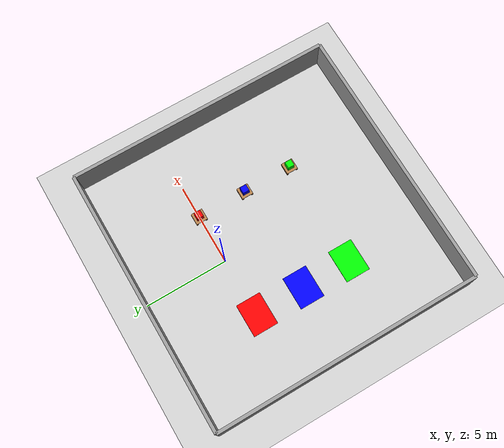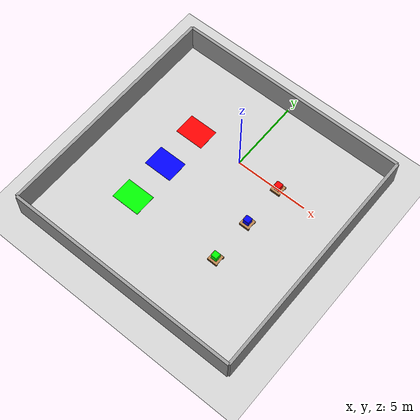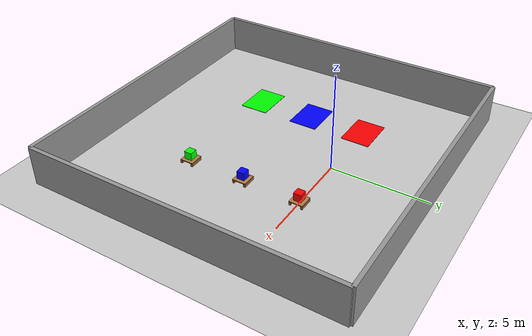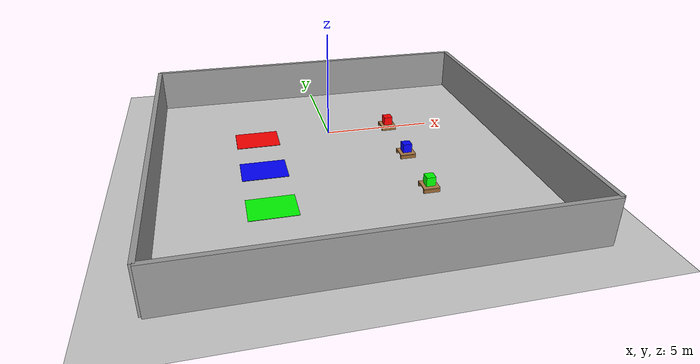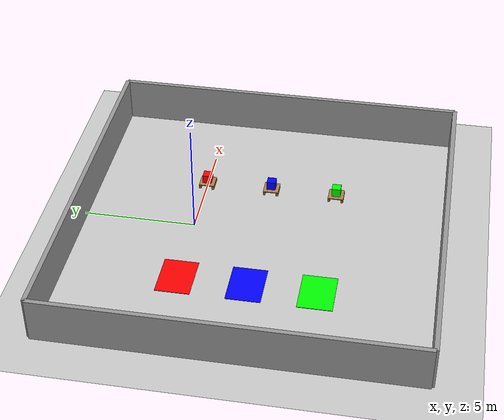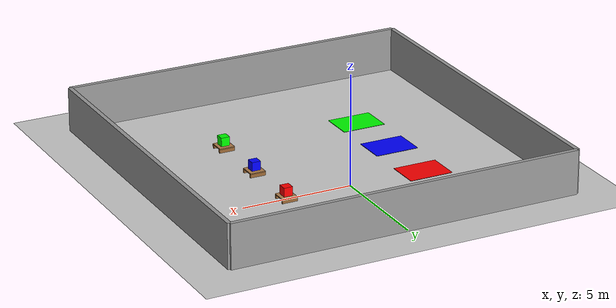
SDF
<?xml version="1.0" ?>
<sdf version="1.6">
  <world name="simple_world">

    <include><uri>model://sun</uri></include>
    <include><uri>model://ground_plane</uri></include>

    <!-- Pallet with clearance for forks (SQUARE: 0.7m x 0.7m) -->
    <model name="pallet">
      <static>false</static>
      <pose>3 0 0 0 0 0</pose>
      <link name="link">
        <!-- Left runner (HIGH FRICTION for grip) - aligned with deck edge -->
        <visual name="runner_left">
          <pose>0 -0.30 0.08 0 0 0</pose>
          <geometry><box><size>0.7 0.10 0.16</size></box></geometry>
          <material><ambient>0.6 0.4 0.2 1</ambient></material>
        </visual>
        <collision name="runner_left_col">
          <pose>0 -0.30 0.08 0 0 0</pose>
          <geometry><box><size>0.7 0.10 0.16</size></box></geometry>
          <surface>
            <friction>
              <ode>
                <mu>2000.0</mu>
                <mu2>2000.0</mu2>
              </ode>
            </friction>
          </surface>
        </collision>

        <!-- Right runner (HIGH FRICTION for grip) - aligned with deck edge -->
        <visual name="runner_right">
          <pose>0 0.30 0.08 0 0 0</pose>
          <geometry><box><size>0.7 0.10 0.16</size></box></geometry>
          <material><ambient>0.6 0.4 0.2 1</ambient></material>
        </visual>
        <collision name="runner_right_col">
          <pose>0 0.30 0.08 0 0 0</pose>
          <geometry><box><size>0.7 0.10 0.16</size></box></geometry>
          <surface>
            <friction>
              <ode>
                <mu>2000.0</mu>
                <mu2>2000.0</mu2>
              </ode>
            </friction>
          </surface>
        </collision>

        <!-- Top deck -->
        <visual name="deck">
          <pose>0 0 0.18 0 0 0</pose>
          <geometry><box><size>0.7 0.7 0.04</size></box></geometry>
          <material><ambient>0.7 0.5 0.3 1</ambient></material>
        </visual>
        <collision name="deck_col">
          <pose>0 0 0.18 0 0 0</pose>
          <geometry><box><size>0.7 0.7 0.04</size></box></geometry>
        </collision>
        <inertial>
          <mass>0.5</mass>
          <inertia>
            <ixx>0.05</ixx><iyy>0.05</iyy><izz>0.05</izz>
            <ixy>0</ixy><ixz>0</ixz><iyz>0</iyz>
          </inertia>
        </inertial>
      </link>

      <!-- Red Box attached to pallet -->
      <link name="box_link">
        <pose>0 0 0.42 0 0 0</pose>
        <visual name="visual">
          <geometry><box><size>0.4 0.4 0.4</size></box></geometry>
          <material><ambient>1 0 0 1</ambient><diffuse>1 0 0 1</diffuse></material>
        </visual>
        <collision name="collision">
          <geometry><box><size>0.4 0.4 0.4</size></box></geometry>
        </collision>
        <inertial><mass>0.5</mass><inertia><ixx>0.01</ixx><iyy>0.01</iyy><izz>0.01</izz></inertia></inertial>
      </link>

      <!-- Fixed joint to attach box to pallet -->
      <joint name="box_joint" type="fixed">
        <parent>link</parent>
        <child>box_link</child>
      </joint>
    </model>

    <!-- Pallet 2 with blue box (3 units to the right of pallet 1) -->
    <model name="pallet2">
      <static>false</static>
      <pose>3 -3 0 0 0 0</pose>
      <link name="link">
        <!-- Left runner (HIGH FRICTION for grip) - aligned with deck edge -->
        <visual name="runner_left">
          <pose>0 -0.30 0.08 0 0 0</pose>
          <geometry><box><size>0.7 0.10 0.16</size></box></geometry>
          <material><ambient>0.6 0.4 0.2 1</ambient></material>
        </visual>
        <collision name="runner_left_col">
          <pose>0 -0.30 0.08 0 0 0</pose>
          <geometry><box><size>0.7 0.10 0.16</size></box></geometry>
          <surface>
            <friction>
              <ode>
                <mu>2000.0</mu>
                <mu2>2000.0</mu2>
              </ode>
            </friction>
          </surface>
        </collision>

        <!-- Right runner (HIGH FRICTION for grip) - aligned with deck edge -->
        <visual name="runner_right">
          <pose>0 0.30 0.08 0 0 0</pose>
          <geometry><box><size>0.7 0.10 0.16</size></box></geometry>
          <material><ambient>0.6 0.4 0.2 1</ambient></material>
        </visual>
        <collision name="runner_right_col">
          <pose>0 0.30 0.08 0 0 0</pose>
          <geometry><box><size>0.7 0.10 0.16</size></box></geometry>
          <surface>
            <friction>
              <ode>
                <mu>2000.0</mu>
                <mu2>2000.0</mu2>
              </ode>
            </friction>
          </surface>
        </collision>

        <!-- Top deck -->
        <visual name="deck">
          <pose>0 0 0.18 0 0 0</pose>
          <geometry><box><size>0.7 0.7 0.04</size></box></geometry>
          <material><ambient>0.7 0.5 0.3 1</ambient></material>
        </visual>
        <collision name="deck_col">
          <pose>0 0 0.18 0 0 0</pose>
          <geometry><box><size>0.7 0.7 0.04</size></box></geometry>
        </collision>
        <inertial>
          <mass>0.5</mass>
          <inertia>
            <ixx>0.05</ixx><iyy>0.05</iyy><izz>0.05</izz>
            <ixy>0</ixy><ixz>0</ixz><iyz>0</iyz>
          </inertia>
        </inertial>
      </link>

      <!-- Blue Box attached to pallet -->
      <link name="box_link">
        <pose>0 0 0.42 0 0 0</pose>
        <visual name="visual">
          <geometry><box><size>0.4 0.4 0.4</size></box></geometry>
          <material><ambient>0 0 1 1</ambient><diffuse>0 0 1 1</diffuse></material>
        </visual>
        <collision name="collision">
          <geometry><box><size>0.4 0.4 0.4</size></box></geometry>
        </collision>
        <inertial><mass>0.5</mass><inertia><ixx>0.01</ixx><iyy>0.01</iyy><izz>0.01</izz></inertia></inertial>
      </link>

      <!-- Fixed joint to attach box to pallet -->
      <joint name="box_joint" type="fixed">
        <parent>link</parent>
        <child>box_link</child>
      </joint>
    </model>

    <!-- Pallet 3 with green box (6 units to the right of pallet 1) -->
    <model name="pallet3">
      <static>false</static>
      <pose>3 -6 0 0 0 0</pose>
      <link name="link">
        <!-- Left runner (HIGH FRICTION for grip) - aligned with deck edge -->
        <visual name="runner_left">
          <pose>0 -0.30 0.08 0 0 0</pose>
          <geometry><box><size>0.7 0.10 0.16</size></box></geometry>
          <material><ambient>0.6 0.4 0.2 1</ambient></material>
        </visual>
        <collision name="runner_left_col">
          <pose>0 -0.30 0.08 0 0 0</pose>
          <geometry><box><size>0.7 0.10 0.16</size></box></geometry>
          <surface>
            <friction>
              <ode>
                <mu>2000.0</mu>
                <mu2>2000.0</mu2>
              </ode>
            </friction>
          </surface>
        </collision>

        <!-- Right runner (HIGH FRICTION for grip) - aligned with deck edge -->
        <visual name="runner_right">
          <pose>0 0.30 0.08 0 0 0</pose>
          <geometry><box><size>0.7 0.10 0.16</size></box></geometry>
          <material><ambient>0.6 0.4 0.2 1</ambient></material>
        </visual>
        <collision name="runner_right_col">
          <pose>0 0.30 0.08 0 0 0</pose>
          <geometry><box><size>0.7 0.10 0.16</size></box></geometry>
          <surface>
            <friction>
              <ode>
                <mu>2000.0</mu>
                <mu2>2000.0</mu2>
              </ode>
            </friction>
          </surface>
        </collision>

        <!-- Top deck -->
        <visual name="deck">
          <pose>0 0 0.18 0 0 0</pose>
          <geometry><box><size>0.7 0.7 0.04</size></box></geometry>
          <material><ambient>0.7 0.5 0.3 1</ambient></material>
        </visual>
        <collision name="deck_col">
          <pose>0 0 0.18 0 0 0</pose>
          <geometry><box><size>0.7 0.7 0.04</size></box></geometry>
        </collision>
        <inertial>
          <mass>0.5</mass>
          <inertia>
            <ixx>0.05</ixx><iyy>0.05</iyy><izz>0.05</izz>
            <ixy>0</ixy><ixz>0</ixz><iyz>0</iyz>
          </inertia>
        </inertial>
      </link>

      <!-- Green Box attached to pallet -->
      <link name="box_link">
        <pose>0 0 0.42 0 0 0</pose>
        <visual name="visual">
          <geometry><box><size>0.4 0.4 0.4</size></box></geometry>
          <material><ambient>0 1 0 1</ambient><diffuse>0 1 0 1</diffuse></material>
        </visual>
        <collision name="collision">
          <geometry><box><size>0.4 0.4 0.4</size></box></geometry>
        </collision>
        <inertial><mass>0.5</mass><inertia><ixx>0.01</ixx><iyy>0.01</iyy><izz>0.01</izz></inertia></inertial>
      </link>

      <!-- Fixed joint to attach box to pallet -->
      <joint name="box_joint" type="fixed">
        <parent>link</parent>
        <child>box_link</child>
      </joint>
    </model>

    <!-- Conveyor Belt (Drop-off location) -->
    <model name="conveyor_belt">
      <static>true</static>
      <pose>-3.5 0 0.01 0 0 0</pose>
      <link name="link">
        <visual name="visual">
          <geometry><box><size>2.0 1.5 0.02</size></box></geometry>
          <material><ambient>0.8 0.1 0.1 1</ambient><diffuse>1 0 0 1</diffuse></material>
        </visual>
        <collision name="collision">
          <geometry><box><size>2.0 1.5 0.02</size></box></geometry>
        </collision>
      </link>
    </model>

    <!-- Conveyor Belt 2 (Drop-off for pallet 2) -->
    <model name="conveyor_belt2">
      <static>true</static>
      <pose>-3.5 -3 0.01 0 0 0</pose>
      <link name="link">
        <visual name="visual">
          <geometry><box><size>2.0 1.5 0.02</size></box></geometry>
          <material><ambient>0.1 0.1 0.8 1</ambient><diffuse>0 0 1 1</diffuse></material>
        </visual>
        <collision name="collision">
          <geometry><box><size>2.0 1.5 0.02</size></box></geometry>
        </collision>
      </link>
    </model>

    <!-- Conveyor Belt 3 (Drop-off for pallet 3) -->
    <model name="conveyor_belt3">
      <static>true</static>
      <pose>-3.5 -6 0.01 0 0 0</pose>
      <link name="link">
        <visual name="visual">
          <geometry><box><size>2.0 1.5 0.02</size></box></geometry>
          <material><ambient>0.1 0.8 0.1 1</ambient><diffuse>0 1 0 1</diffuse></material>
        </visual>
        <collision name="collision">
          <geometry><box><size>2.0 1.5 0.02</size></box></geometry>
        </collision>
      </link>
    </model>

    <!-- Warehouse Walls -->
    <!-- Back wall (behind pallets) -->
    <model name="wall_back">
      <static>true</static>
      <pose>8 -3 1.0 0 0 0</pose>
      <link name="link">
        <visual name="visual">
          <geometry><box><size>0.2 16 2.0</size></box></geometry>
          <material><ambient>0.5 0.5 0.5 1</ambient><diffuse>0.6 0.6 0.6 1</diffuse></material>
        </visual>
        <collision name="collision">
          <geometry><box><size>0.2 16 2.0</size></box></geometry>
        </collision>
      </link>
    </model>

    <!-- Front wall (behind conveyors) -->
    <model name="wall_front">
      <static>true</static>
      <pose>-8 -3 1.0 0 0 0</pose>
      <link name="link">
        <visual name="visual">
          <geometry><box><size>0.2 16 2.0</size></box></geometry>
          <material><ambient>0.5 0.5 0.5 1</ambient><diffuse>0.6 0.6 0.6 1</diffuse></material>
        </visual>
        <collision name="collision">
          <geometry><box><size>0.2 16 2.0</size></box></geometry>
        </collision>
      </link>
    </model>

    <!-- Left wall -->
    <model name="wall_left">
      <static>true</static>
      <pose>0 5 1.0 0 0 0</pose>
      <link name="link">
        <visual name="visual">
          <geometry><box><size>16 0.2 2.0</size></box></geometry>
          <material><ambient>0.5 0.5 0.5 1</ambient><diffuse>0.6 0.6 0.6 1</diffuse></material>
        </visual>
        <collision name="collision">
          <geometry><box><size>16 0.2 2.0</size></box></geometry>
        </collision>
      </link>
    </model>

    <!-- Right wall -->
    <model name="wall_right">
      <static>true</static>
      <pose>0 -11 1.0 0 0 0</pose>
      <link name="link">
        <visual name="visual">
          <geometry><box><size>16 0.2 2.0</size></box></geometry>
          <material><ambient>0.5 0.5 0.5 1</ambient><diffuse>0.6 0.6 0.6 1</diffuse></material>
        </visual>
        <collision name="collision">
          <geometry><box><size>16 0.2 2.0</size></box></geometry>
        </collision>
      </link>
    </model>

  </world>
</sdf>
